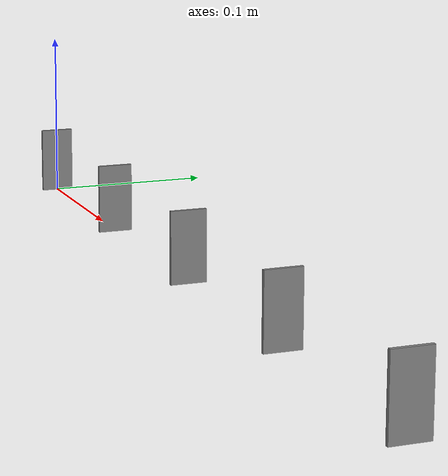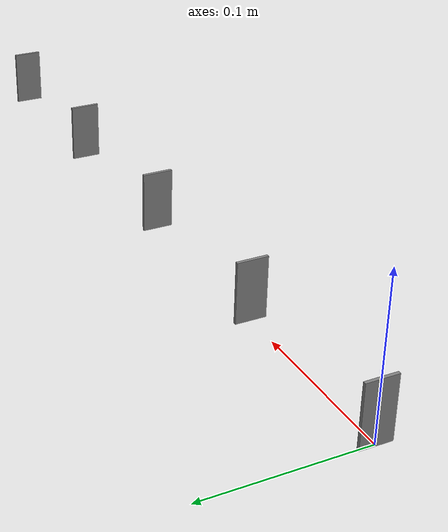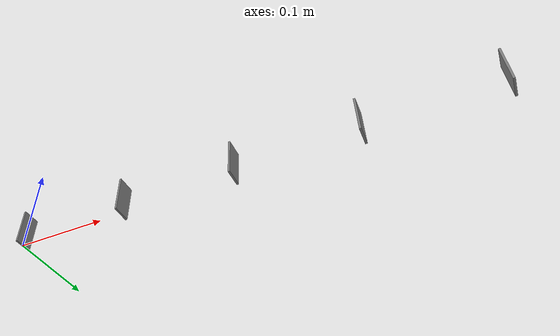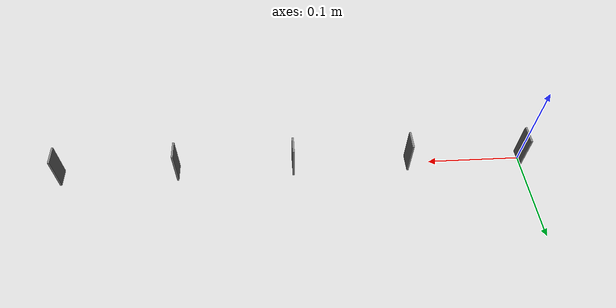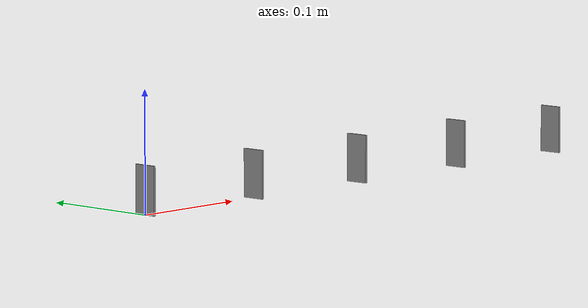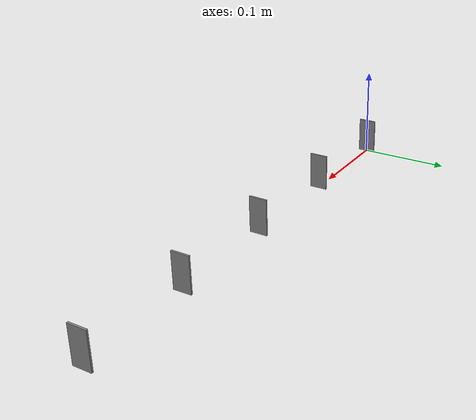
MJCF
<mujoco>
  <compiler meshdir="assets/meshes" texturedir="assets/textures" autolimits="true"/>

  <asset>

  </asset>

  <default>

        <!-- Domino -->
        <default class="domino">
          <geom   type="box" size="0.001 0.01 0.02"  />
        </default>

  </default>

  <worldbody>

        <body pos="0 0 0.02" euler="0 0 0">
          <geom class="domino"/>
        </body>

        <body pos="0.125 0 0.02" euler="0 0 0">
          <geom class="domino"/>
        </body>

        <body pos="0.25 0 0.02" euler="0 0 0">
          <geom class="domino"/>
        </body>

        <body pos="0.375 0 0.02" euler="0 0 0">
          <geom class="domino"/>
        </body>

        <body pos="0.5 0 0.02" euler="0 0 0">
          <geom class="domino"/>
        </body>

  </worldbody>

</mujoco>
